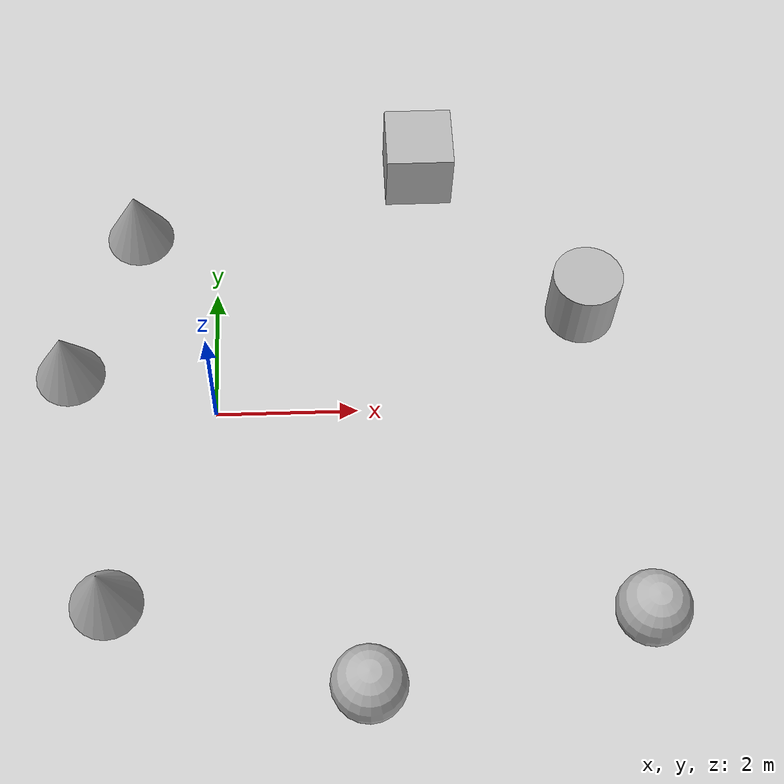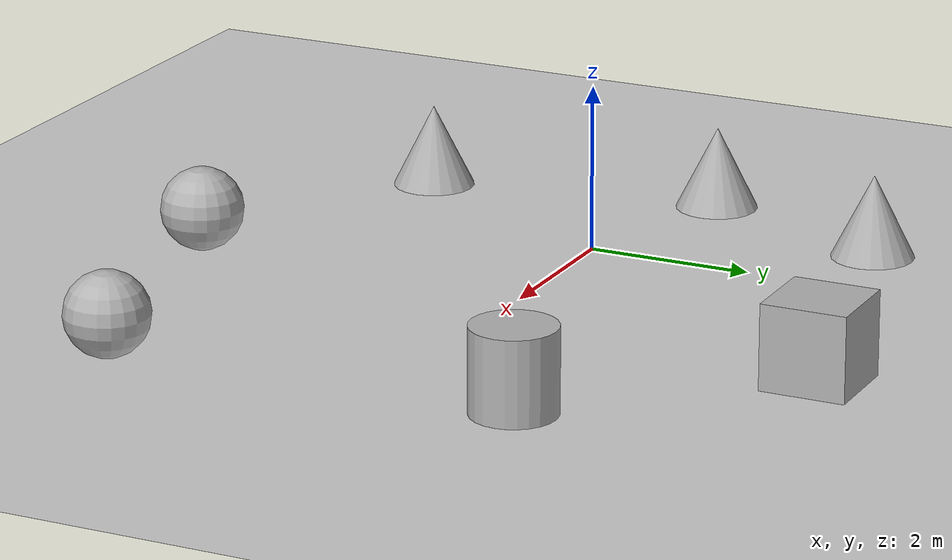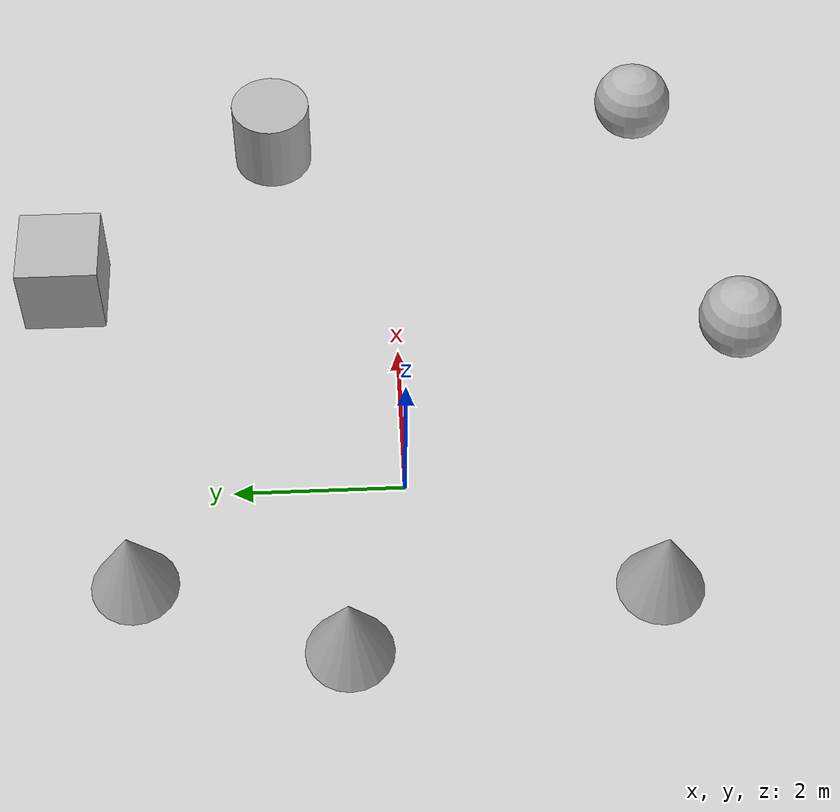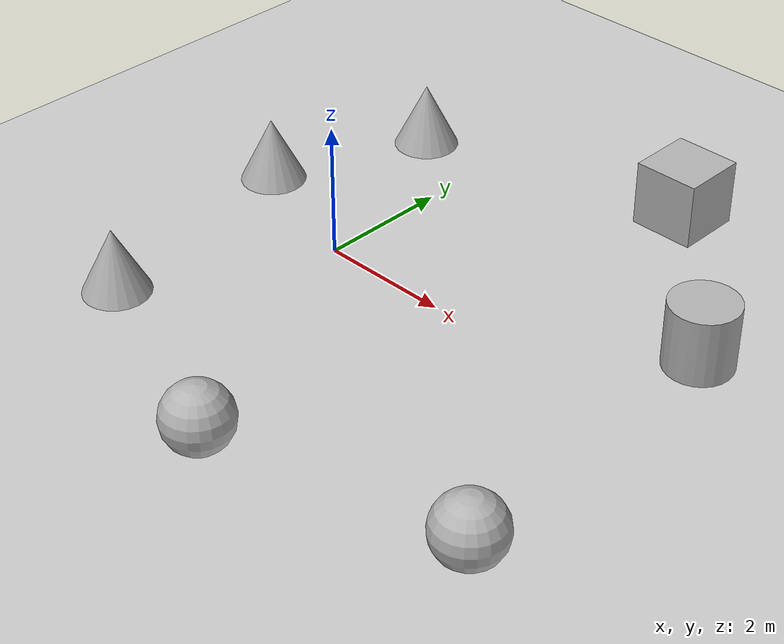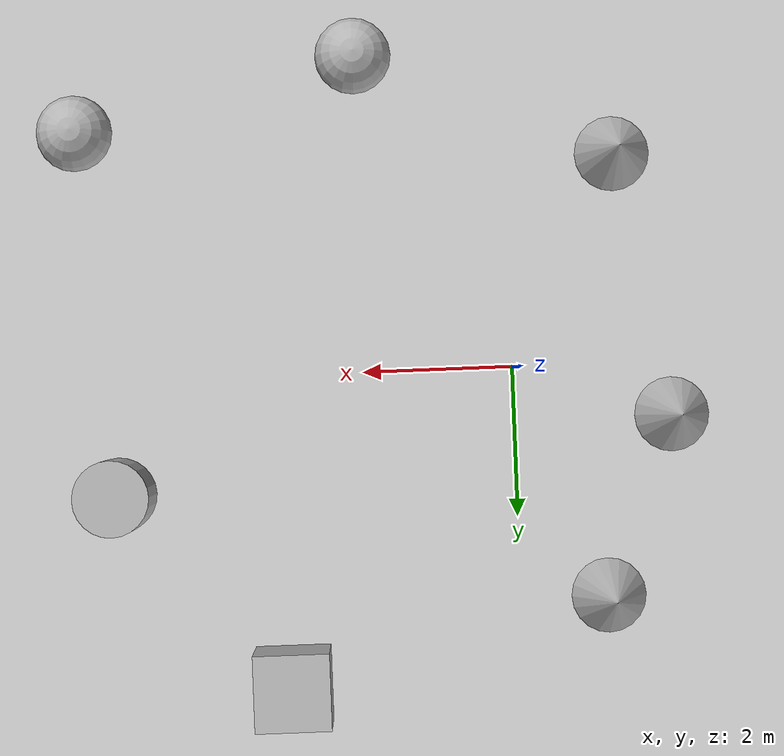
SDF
<sdf version='1.10'>
  <world name='default'>
    <physics name='physics' type='ode'>
      <max_step_size>0.001</max_step_size>
      <real_time_factor>1</real_time_factor>
      <real_time_update_rate>1000</real_time_update_rate>
    </physics>
    <plugin name='gz::sim::systems::Physics' filename='gz-sim-physics-system'/>
    <plugin name='gz::sim::systems::UserCommands' filename='gz-sim-user-commands-system'/>
    <plugin name='gz::sim::systems::SceneBroadcaster' filename='gz-sim-scene-broadcaster-system'/>
    <plugin name='gz::sim::systems::Sensors' filename='gz-sim-sensors-system'>
      <render_engine>ogre2</render_engine>
    </plugin>
    <plugin name='gz::sim::systems::Contact' filename='gz-sim-contact-system'/>
    <gravity>0 0 -9.8000000000000007</gravity>
    <magnetic_field>5.5644999999999998e-06 2.2875799999999999e-05 -4.2388400000000002e-05</magnetic_field>
    <atmosphere type='adiabatic'/>
    <scene>
      <ambient>0.400000006 0.400000006 0.400000006 1</ambient>
      <background>0.699999988 0.699999988 0.699999988 1</background>
      <shadows>true</shadows>
    </scene>
    <model name='ground_plane'>
      <static>true</static>
      <link name='link'>
        <collision name='collision'>
          <geometry>
            <plane>
              <normal>0 0 1</normal>
              <size>100 100</size>
            </plane>
          </geometry>
          <surface>
            <friction>
              <ode/>
            </friction>
            <bounce/>
            <contact/>
          </surface>
        </collision>
        <visual name='visual'>
          <geometry>
            <plane>
              <normal>0 0 1</normal>
              <size>100 100</size>
            </plane>
          </geometry>
          <material>
            <ambient>0.800000012 0.800000012 0.800000012 1</ambient>
            <diffuse>0.800000012 0.800000012 0.800000012 1</diffuse>
            <specular>0.800000012 0.800000012 0.800000012 1</specular>
          </material>
        </visual>
        <pose>0 0 0 0 0 0</pose>
        <inertial>
          <pose>0 0 0 0 0 0</pose>
          <mass>1</mass>
          <inertia>
            <ixx>1</ixx>
            <ixy>0</ixy>
            <ixz>0</ixz>
            <iyy>1</iyy>
            <iyz>0</iyz>
            <izz>1</izz>
          </inertia>
        </inertial>
        <enable_wind>false</enable_wind>
      </link>
      <pose>0 0 0 0 0 0</pose>
      <self_collide>false</self_collide>
    </model>
    <model name='box'>
      <pose>3.0679883779699288 4.1125574692965756 0.5 0 0 0</pose>
      <link name='box_link'>
        <inertial>
          <inertia>
            <ixx>0.16666</ixx>
            <ixy>0</ixy>
            <ixz>0</ixz>
            <iyy>0.16666</iyy>
            <iyz>0</iyz>
            <izz>0.16666</izz>
          </inertia>
          <mass>1</mass>
          <pose>0 0 0 0 0 0</pose>
        </inertial>
        <collision name='box_collision'>
          <geometry>
            <box>
              <size>1 1 1</size>
            </box>
          </geometry>
          <surface>
            <friction>
              <ode/>
            </friction>
            <bounce/>
            <contact/>
          </surface>
        </collision>
        <visual name='box_visual'>
          <geometry>
            <box>
              <size>1 1 1</size>
            </box>
          </geometry>
          <material>
            <ambient>0.300000012 0.300000012 0.300000012 1</ambient>
            <diffuse>0.699999988 0.699999988 0.699999988 1</diffuse>
            <specular>1 1 1 1</specular>
          </material>
        </visual>
        <pose>0 0 0 0 0 0</pose>
        <enable_wind>false</enable_wind>
      </link>
      <static>false</static>
      <self_collide>false</self_collide>
    </model>
    <model name='sphere'>
      <pose>1.9833108214418864 -4.169061290152797 0.5 0 0 0</pose>
      <link name='sphere_link'>
        <inertial>
          <inertia>
            <ixx>0.10000000000000001</ixx>
            <ixy>0</ixy>
            <ixz>0</ixz>
            <iyy>0.10000000000000001</iyy>
            <iyz>0</iyz>
            <izz>0.10000000000000001</izz>
          </inertia>
          <mass>1</mass>
          <pose>0 0 0 0 0 0</pose>
        </inertial>
        <collision name='sphere_collision'>
          <geometry>
            <sphere>
              <radius>0.5</radius>
            </sphere>
          </geometry>
          <surface>
            <friction>
              <ode/>
            </friction>
            <bounce/>
            <contact/>
          </surface>
        </collision>
        <visual name='sphere_visual'>
          <geometry>
            <sphere>
              <radius>0.5</radius>
            </sphere>
          </geometry>
          <material>
            <ambient>0.300000012 0.300000012 0.300000012 1</ambient>
            <diffuse>0.699999988 0.699999988 0.699999988 1</diffuse>
            <specular>1 1 1 1</specular>
          </material>
        </visual>
        <pose>0 0 0 0 0 0</pose>
        <enable_wind>false</enable_wind>
      </link>
      <static>false</static>
      <self_collide>false</self_collide>
    </model>
    <model name='cone'>
      <pose>-1.1812697039509095 3.1018221825038785 0.5 0 0 0</pose>
      <link name='cone_link'>
        <inertial>
          <inertia>
            <ixx>0.074999999999999997</ixx>
            <ixy>0</ixy>
            <ixz>0</ixz>
            <iyy>0.074999999999999997</iyy>
            <iyz>0</iyz>
            <izz>0.074999999999999997</izz>
          </inertia>
          <mass>1</mass>
          <pose>0 0 0 0 0 0</pose>
        </inertial>
        <collision name='cone_collision'>
          <geometry>
            <cone>
              <radius>0.5</radius>
              <length>1</length>
            </cone>
          </geometry>
          <surface>
            <friction>
              <ode/>
            </friction>
            <bounce/>
            <contact/>
          </surface>
        </collision>
        <visual name='cone_visual'>
          <geometry>
            <cone>
              <radius>0.5</radius>
              <length>1</length>
            </cone>
          </geometry>
          <material>
            <ambient>0.300000012 0.300000012 0.300000012 1</ambient>
            <diffuse>0.699999988 0.699999988 0.699999988 1</diffuse>
            <specular>1 1 1 1</specular>
          </material>
        </visual>
        <pose>0 0 0 0 0 0</pose>
        <enable_wind>false</enable_wind>
      </link>
      <static>false</static>
      <self_collide>false</self_collide>
    </model>
    <model name='cone_0'>
      <pose>-2.1138235940480241 0.70751405919842336 0.5 0 0 0</pose>
      <link name='cone_link'>
        <inertial>
          <inertia>
            <ixx>0.074999999999999997</ixx>
            <ixy>0</ixy>
            <ixz>0</ixz>
            <iyy>0.074999999999999997</iyy>
            <iyz>0</iyz>
            <izz>0.074999999999999997</izz>
          </inertia>
          <mass>1</mass>
          <pose>0 0 0 0 0 0</pose>
        </inertial>
        <collision name='cone_collision'>
          <geometry>
            <cone>
              <radius>0.5</radius>
              <length>1</length>
            </cone>
          </geometry>
          <surface>
            <friction>
              <ode/>
            </friction>
            <bounce/>
            <contact/>
          </surface>
        </collision>
        <visual name='cone_visual'>
          <geometry>
            <cone>
              <radius>0.5</radius>
              <length>1</length>
            </cone>
          </geometry>
          <material>
            <ambient>0.300000012 0.300000012 0.300000012 1</ambient>
            <diffuse>0.699999988 0.699999988 0.699999988 1</diffuse>
            <specular>1 1 1 1</specular>
          </material>
        </visual>
        <pose>0 0 0 0 0 0</pose>
        <enable_wind>false</enable_wind>
      </link>
      <static>false</static>
      <self_collide>false</self_collide>
    </model>
    <model name='cone_1'>
      <pose>-1.4378055327761032 -2.8119619295210962 0.5 0 0 0</pose>
      <link name='cone_link'>
        <inertial>
          <inertia>
            <ixx>0.074999999999999997</ixx>
            <ixy>0</ixy>
            <ixz>0</ixz>
            <iyy>0.074999999999999997</iyy>
            <iyz>0</iyz>
            <izz>0.074999999999999997</izz>
          </inertia>
          <mass>1</mass>
          <pose>0 0 0 0 0 0</pose>
        </inertial>
        <collision name='cone_collision'>
          <geometry>
            <cone>
              <radius>0.5</radius>
              <length>1</length>
            </cone>
          </geometry>
          <surface>
            <friction>
              <ode/>
            </friction>
            <bounce/>
            <contact/>
          </surface>
        </collision>
        <visual name='cone_visual'>
          <geometry>
            <cone>
              <radius>0.5</radius>
              <length>1</length>
            </cone>
          </geometry>
          <material>
            <ambient>0.300000012 0.300000012 0.300000012 1</ambient>
            <diffuse>0.699999988 0.699999988 0.699999988 1</diffuse>
            <specular>1 1 1 1</specular>
          </material>
        </visual>
        <pose>0 0 0 0 0 0</pose>
        <enable_wind>false</enable_wind>
      </link>
      <static>false</static>
      <self_collide>false</self_collide>
    </model>
    <model name='sphere_0'>
      <pose>5.6850349267289246 -3.2848894266700892 0.5 0 0 0</pose>
      <link name='sphere_link'>
        <inertial>
          <inertia>
            <ixx>0.10000000000000001</ixx>
            <ixy>0</ixy>
            <ixz>0</ixz>
            <iyy>0.10000000000000001</iyy>
            <iyz>0</iyz>
            <izz>0.10000000000000001</izz>
          </inertia>
          <mass>1</mass>
          <pose>0 0 0 0 0 0</pose>
        </inertial>
        <collision name='sphere_collision'>
          <geometry>
            <sphere>
              <radius>0.5</radius>
            </sphere>
          </geometry>
          <surface>
            <friction>
              <ode/>
            </friction>
            <bounce/>
            <contact/>
          </surface>
        </collision>
        <visual name='sphere_visual'>
          <geometry>
            <sphere>
              <radius>0.5</radius>
            </sphere>
          </geometry>
          <material>
            <ambient>0.300000012 0.300000012 0.300000012 1</ambient>
            <diffuse>0.699999988 0.699999988 0.699999988 1</diffuse>
            <specular>1 1 1 1</specular>
          </material>
        </visual>
        <pose>0 0 0 0 0 0</pose>
        <enable_wind>false</enable_wind>
      </link>
      <static>false</static>
      <self_collide>false</self_collide>
    </model>
    <model name='cylinder'>
      <pose>5.3226798881377153 1.5168655841370819 0.5 0 0 0</pose>
      <link name='cylinder_link'>
        <inertial>
          <inertia>
            <ixx>0.14580000000000001</ixx>
            <ixy>0</ixy>
            <ixz>0</ixz>
            <iyy>0.14580000000000001</iyy>
            <iyz>0</iyz>
            <izz>0.125</izz>
          </inertia>
          <mass>1</mass>
          <pose>0 0 0 0 0 0</pose>
        </inertial>
        <collision name='cylinder_collision'>
          <geometry>
            <cylinder>
              <radius>0.5</radius>
              <length>1</length>
            </cylinder>
          </geometry>
          <surface>
            <friction>
              <ode/>
            </friction>
            <bounce/>
            <contact/>
          </surface>
        </collision>
        <visual name='cylinder_visual'>
          <geometry>
            <cylinder>
              <radius>0.5</radius>
              <length>1</length>
            </cylinder>
          </geometry>
          <material>
            <ambient>0.300000012 0.300000012 0.300000012 1</ambient>
            <diffuse>0.699999988 0.699999988 0.699999988 1</diffuse>
            <specular>1 1 1 1</specular>
          </material>
        </visual>
        <pose>0 0 0 0 0 0</pose>
        <enable_wind>false</enable_wind>
      </link>
      <static>false</static>
      <self_collide>false</self_collide>
    </model>
    <light name='sun' type='directional'>
      <pose>0 0 10 0 0 0</pose>
      <cast_shadows>true</cast_shadows>
      <intensity>1</intensity>
      <direction>-0.5 0.10000000000000001 -0.90000000000000002</direction>
      <diffuse>0.800000012 0.800000012 0.800000012 1</diffuse>
      <specular>0.200000003 0.200000003 0.200000003 1</specular>
      <attenuation>
        <range>1000</range>
        <linear>0.01</linear>
        <constant>0.90000000000000002</constant>
        <quadratic>0.001</quadratic>
      </attenuation>
      <spot>
        <inner_angle>0</inner_angle>
        <outer_angle>0</outer_angle>
        <falloff>0</falloff>
      </spot>
    </light>
  </world>
</sdf>
